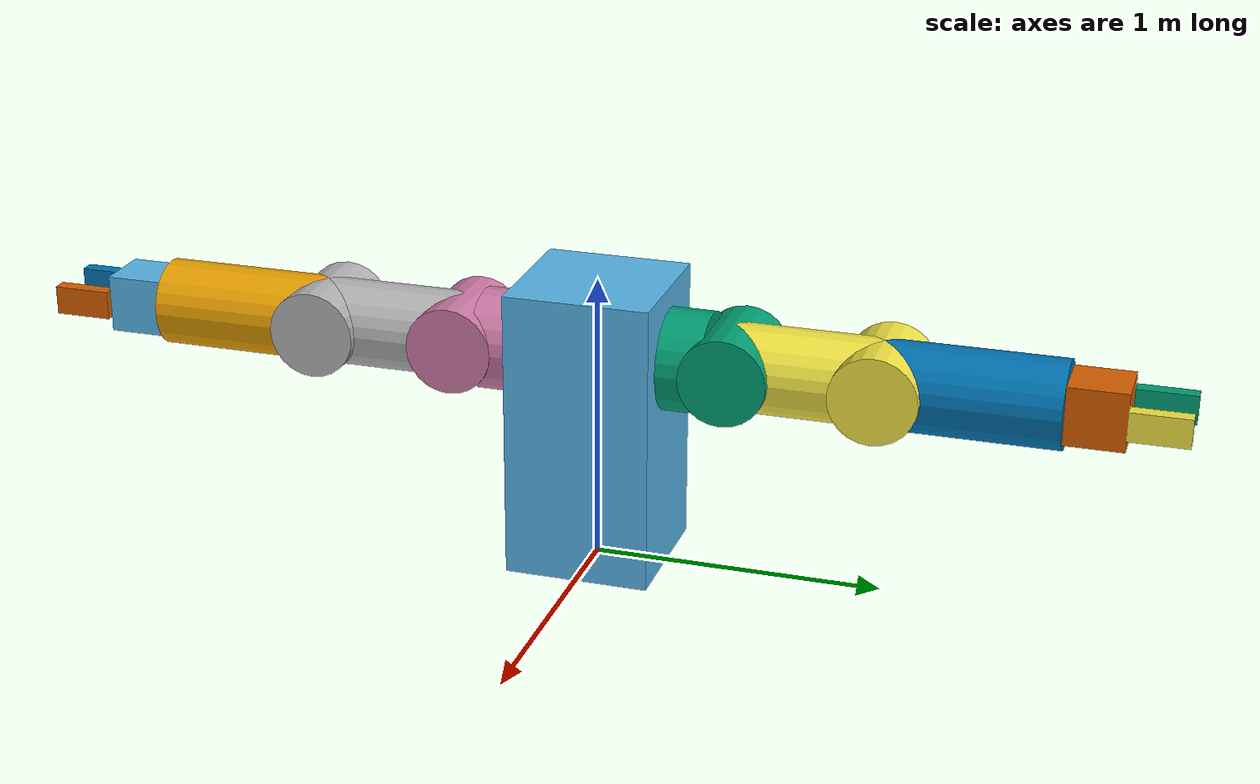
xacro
<?xml version="1.0"?>
<robot xmlns:xacro="http://www.ros.org/wiki/xacro" name="SSLSHAFT">

    <xacro:property name="arm_stand" value="0.5 0.5 1"/>

    <!-- arm properties -->
    <xacro:property name="shoulder_base_radius" value="0.175"/>
    <xacro:property name="link_radius" value="0.15"/>
    <xacro:property name="shoulder_roll_base" value="0.15"/>
    <xacro:property name="shoulder_roll_extrude" value="0.35"/>
    <xacro:property name="shoulder_pitch_length" value="0.5"/>
    <xacro:property name="shoulder_pitch_extrude" value="0.35"/>
    <xacro:property name="elbow_pitch_length" value="0.6"/>
    <xacro:property name="wrist_roll_size" value="0.2 0.2 0.2"/>

    <link name="base_link"></link>

    <link name="arm_stand">
        <origin xyz="0 0 0.5"/>
        <visual>
            <geometry>
                <box size="${arm_stand}"/>
            </geometry>
        </visual>
        <collision>
            <geometry>
                <box size="${arm_stand}"/>
            </geometry>
        </collision>
    </link>
    <joint name="arm_stand" type="fixed">
        <parent link="base_link"/>
        <child link="arm_stand"/>
        <origin xyz="0 0 0.5" rpy="0 0 0"/>
        <axis xyz="0.0 0.0 0.0"/>
    </joint>

    <link name="shoulder_roll_L">
        <visual>
            <origin xyz="0 0 -0.15"/>
            <geometry>
                <cylinder radius="${shoulder_base_radius}" length="${shoulder_roll_base}"/>
            </geometry>
        </visual>
        <collision>
            <origin xyz="0 0 -0.15"/>
            <geometry>
                <cylinder radius="${shoulder_base_radius}" length="${shoulder_roll_base}"/>
            </geometry>
        </collision>

        <visual>
            <origin xyz="0 0 0" rpy="0.0 1.5708 0.0"/>
            <geometry>
                <cylinder radius="${link_radius}" length="${shoulder_roll_extrude}"/>
            </geometry>
        </visual>
        <collision>
            <origin xyz="0 0 0" rpy="0.0 1.5708 0.0"/>
            <geometry>
                <cylinder radius="${link_radius}" length="${shoulder_roll_extrude}"/>
            </geometry>
        </collision>
    </link>
    <joint name="shoulder_roll_L" type="revolute">
        <parent link="arm_stand"/>
        <child link="shoulder_roll_L"/>
        <origin xyz="0 ${.25+.15+.075} .25" rpy="-1.5708 0 0"/>
        <axis xyz="0.0 0.0 1.0"/>
        <limit lower="-6.0" upper="6.0" effort="0.0" velocity="0.0"/>
    </joint>

    <link name="shoulder_pitch_L">
        <visual>
            <origin xyz="-.25 0.0 0.0" rpy="0.0 1.5708 0.0"/>
            <geometry>
                <cylinder radius="${link_radius}" length="${shoulder_pitch_length}"/>
            </geometry>
        </visual>
        <collision>
            <origin xyz="-.25 0.0 0.0" rpy="0.0 1.5708 0.0"/>
            <geometry>
                <cylinder radius="${link_radius}" length="${shoulder_pitch_length}"/>
            </geometry>
        </collision>

        <visual>
            <origin xyz="${-.15-.35} 0.0 0.0" rpy="0.0 0.0 0.0"/>
            <geometry>
                <cylinder radius="${link_radius}" length="${shoulder_pitch_extrude}"/>
            </geometry>
        </visual>
        <collision>
            <origin xyz="${-.15-.35} 0.0 0.0" rpy="0.0 0.0 0.0"/>
            <geometry>
                <cylinder radius="${link_radius}" length="${shoulder_pitch_extrude}"/>
            </geometry>
        </collision>
    </link>
    <joint name="shoulder_pitch_L" type="revolute">
        <parent link="shoulder_roll_L"/>
        <child link="shoulder_pitch_L"/>
        <origin xyz="0 0 0" rpy="0 1.5708 0"/>
        <axis xyz="0.0 0.0 1.0"/>
        <limit lower="-6.0" upper="6.0" effort="0.0" velocity="0.0"/>
    </joint>

    <link name="elbow_pitch_L">
        <visual>
            <origin xyz="-.3 0.0 0.0" rpy="0.0 -1.5708 0.0"/>
            <geometry>
                <cylinder radius="${link_radius}" length="${elbow_pitch_length}"/>
            </geometry>
        </visual>
        <collision>
            <origin xyz="-.3 0.0 0.0" rpy="0.0 -1.5708 0.0"/>
            <geometry>
                <cylinder radius="${link_radius}" length="${elbow_pitch_length}"/>
            </geometry>
        </collision>
    </link>
    <joint name="elbow_pitch_L" type="revolute">
        <parent link="shoulder_pitch_L"/>
        <child link="elbow_pitch_L"/>
        <origin xyz="-0.5 0.0 0.0"/>
        <axis xyz="0.0 0.0 1.0"/>
        <limit lower="-6.0" upper="6.0" effort="0.0" velocity="0.0"/>
    </joint>

    <link name="wrist_roll_L">
        <visual>
            <origin xyz="0.0 0.0 0.1" rpy="0.0 -1.5708 0.0"/>
            <geometry>
                <box size="0.2 0.2 0.2"/>
            </geometry>
        </visual>
        <collision>
            <origin xyz="0.0 0.0 0.1" rpy="0.0 -1.5708 0.0"/>
            <geometry>
                <box size="0.2 0.2 0.2"/>
            </geometry>
        </collision>
    </link>
    <joint name="wrist_roll_L" type="continuous">
        <origin xyz="-0.6 0.0 0.0" rpy="0.0 -1.5708 0.0"/>
        <parent link="elbow_pitch_L"/>
        <child link="wrist_roll_L"/>
        <axis xyz="0.0 0.0 1.0"/>
        <limit effort="0.0" velocity="0.0"/>
    </joint>

    <!-- Right Arm -->
    <link name="shoulder_roll_R">
        <visual>
            <origin xyz="0 0 -0.15"/>
            <geometry>
                <cylinder radius="${shoulder_base_radius}" length="${shoulder_roll_base}"/>
            </geometry>
        </visual>
        <collision>
            <origin xyz="0 0 -0.15"/>
            <geometry>
                <cylinder radius="${shoulder_base_radius}" length="${shoulder_roll_base}"/>
            </geometry>
        </collision>

        <visual>
            <origin xyz="0 0 0" rpy="0.0 -1.5708 0.0"/>
            <geometry>
                <cylinder radius="${link_radius}" length="${shoulder_roll_extrude}"/>
            </geometry>
        </visual>
        <collision>
            <origin xyz="0 0 0" rpy="0.0 -1.5708 0.0"/>
            <geometry>
                <cylinder radius="${link_radius}" length="${shoulder_roll_extrude}"/>
            </geometry>
        </collision>
    </link>
    <joint name="shoulder_roll_R" type="revolute">
        <parent link="arm_stand"/>
        <child link="shoulder_roll_R"/>
        <origin xyz="0 ${-0.25-0.15-0.075} 0.25" rpy="1.5708 0 0"/>
        <axis xyz="0.0 0.0 1.0"/>
        <limit lower="-6.0" upper="6.0" effort="0.0" velocity="0.0"/>
    </joint>

    <link name="shoulder_pitch_R">
        <visual>
            <origin xyz="0.25 0.0 0.0" rpy="0.0 -1.5708 0.0"/>
            <geometry>
                <cylinder radius="${link_radius}" length="${shoulder_pitch_length}"/>
            </geometry>
        </visual>
        <collision>
            <origin xyz="0.25 0.0 0.0" rpy="0.0 -1.5708 0.0"/>
            <geometry>
                <cylinder radius="${link_radius}" length="${shoulder_pitch_length}"/>
            </geometry>
        </collision>

        <visual>
            <origin xyz="${0.15+0.35} 0.0 0.0" rpy="0.0 0.0 0.0"/>
            <geometry>
                <cylinder radius="${link_radius}" length="${shoulder_pitch_extrude}"/>
            </geometry>
        </visual>
        <collision>
            <origin xyz="${0.15+0.35} 0.0 0.0" rpy="0.0 0.0 0.0"/>
            <geometry>
                <cylinder radius="${link_radius}" length="${shoulder_pitch_extrude}"/>
            </geometry>
        </collision>
    </link>
    <joint name="shoulder_pitch_R" type="revolute">
        <parent link="shoulder_roll_R"/>
        <child link="shoulder_pitch_R"/>
        <origin xyz="0 0 0" rpy="0 -1.5708 0"/>
        <axis xyz="0.0 0.0 1.0"/>
        <limit lower="-6.0" upper="6.0" effort="0.0" velocity="0.0"/>
    </joint>

    <link name="elbow_pitch_R">
        <visual>
            <origin xyz=".3 0.0 0.0" rpy="0.0 1.5708 0.0"/>
            <geometry>
                <cylinder radius="${link_radius}" length="${elbow_pitch_length}"/>
            </geometry>
        </visual>
        <collision>
            <origin xyz=".3 0.0 0.0" rpy="0.0 1.5708 0.0"/>
            <geometry>
                <cylinder radius="${link_radius}" length="${elbow_pitch_length}"/>
            </geometry>
        </collision>
    </link>
    <joint name="elbow_pitch_R" type="revolute">
        <parent link="shoulder_pitch_R"/>
        <child link="elbow_pitch_R"/>
        <origin xyz="0.5 0.0 0.0"/>
        <axis xyz="0.0 0.0 1.0"/>
        <limit lower="-6.0" upper="6.0" effort="0.0" velocity="0.0"/>
    </joint>

    <link name="wrist_roll_R">
        <visual>
            <origin xyz="0.0 0.0 0.1" rpy="0.0 1.5708 0.0"/>
            <geometry>
                <box size="0.2 0.2 0.2"/>
            </geometry>
        </visual>
        <collision>
            <origin xyz="0.0 0.0 0.1" rpy="0.0 1.5708 0.0"/>
            <geometry>
                <box size="0.2 0.2 0.2"/>
            </geometry>
        </collision>
    </link>
    <joint name="wrist_roll_R" type="continuous">
        <origin xyz="0.6 0.0 0.0" rpy="0.0 1.5708 0.0"/>
        <parent link="elbow_pitch_R"/>
        <child link="wrist_roll_R"/>
        <axis xyz="0.0 0.0 1.0"/>
        <limit effort="0.0" velocity="0.0"/>
    </joint>

    <!-- tool drives -->
    <link name="left_tooldrive1">
        <visual>
            <origin xyz="-0.1 0.0 0.0" rpy="0.0 0.0 0.0"/>
            <geometry>
                <box size="0.2 0.1 0.05"/>
            </geometry>
        </visual>
        <collision>
            <origin xyz="-0.1 0.0 0.0" rpy="0.0 0.0 0.0"/>
            <geometry>
                <box size="0.2 0.1 0.05"/>
            </geometry>
        </collision>
    </link>
    <joint name="left_tooldrive1" type="prismatic">
        <origin xyz="-0.1 0.0 0.2" rpy="0.0 1.5708 0.0"/>
        <parent link="wrist_roll_L"/>
        <child link="left_tooldrive1"/>
        <axis xyz="0.0 0.0 1.0"/>
        <limit lower="0.075" upper="0.0" effort="0.0" velocity="0.0"/>
    </joint>

    <link name="left_tooldrive2">
        <visual>
            <origin xyz="0.1 0.0 0.0" rpy="0.0 0.0 0.0"/>
            <geometry>
                <box size="0.2 0.1 0.05"/>
            </geometry>
        </visual>
        <collision>
            <origin xyz="0.1 0.0 0.0" rpy="0.0 0.0 0.0"/>
            <geometry>
                <box size="0.2 0.1 0.05"/>
            </geometry>
        </collision>
    </link>
    <joint name="left_tooldrive2" type="prismatic">
        <origin xyz="0.1 0.0 0.2" rpy="0.0 -1.5708 0.0"/>
        <parent link="wrist_roll_L"/>
        <child link="left_tooldrive2"/>
        <axis xyz="0.0 0.0 1.0"/>
        <limit lower="0.075" upper="0.0" effort="0.0" velocity="0.0"/>
        <mimic joint="left_tooldrive1" multiplier="1.0"/>
    </joint>

    <link name="right_tooldrive1">
        <visual>
            <origin xyz="-0.1 0.0 0.0" rpy="0.0 0.0 0.0"/>
            <geometry>
                <box size="0.2 0.1 0.05"/>
            </geometry>
        </visual>
        <collision>
            <origin xyz="-0.1 0.0 0.0" rpy="0.0 0.0 0.0"/>
            <geometry>
                <box size="0.2 0.1 0.05"/>
            </geometry>
        </collision>
    </link>
    <joint name="right_tooldrive1" type="prismatic">
        <origin xyz="-0.1 0.0 0.2" rpy="0.0 1.5708 0.0"/>
        <parent link="wrist_roll_R"/>
        <child link="right_tooldrive1"/>
        <axis xyz="0.0 0.0 1.0"/>
        <limit lower="0.075" upper="0.0" effort="0.0" velocity="0.0"/>
    </joint>

    <link name="right_tooldrive2">
        <visual>
            <origin xyz="0.1 0.0 0.0" rpy="0.0 0.0 0.0"/>
            <geometry>
                <box size="0.2 0.1 0.05"/>
            </geometry>
        </visual>
        <collision>
            <origin xyz="0.1 0.0 0.0" rpy="0.0 0.0 0.0"/>
            <geometry>
                <box size="0.2 0.1 0.05"/>
            </geometry>
        </collision>
    </link>
    <joint name="right_tooldrive2" type="prismatic">
        <origin xyz="0.1 0.0 0.2" rpy="0.0 -1.5708 0.0"/>
        <parent link="wrist_roll_R"/>
        <child link="right_tooldrive2"/>
        <axis xyz="0.0 0.0 1.0"/>
        <limit lower="0.075" upper="0.0" effort="0.0" velocity="0.0"/>
        <mimic joint="right_tooldrive1" multiplier="1.0"/>
    </joint>

</robot>
